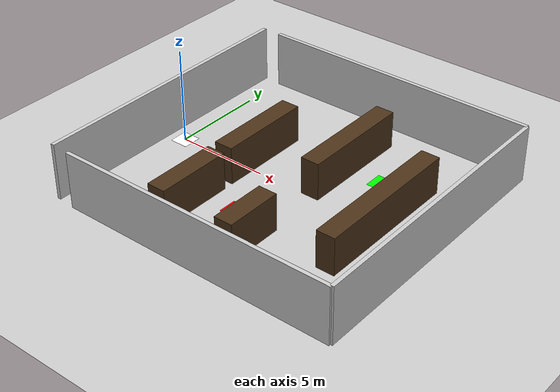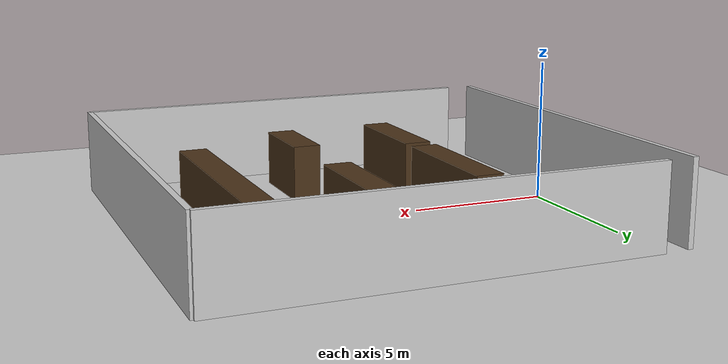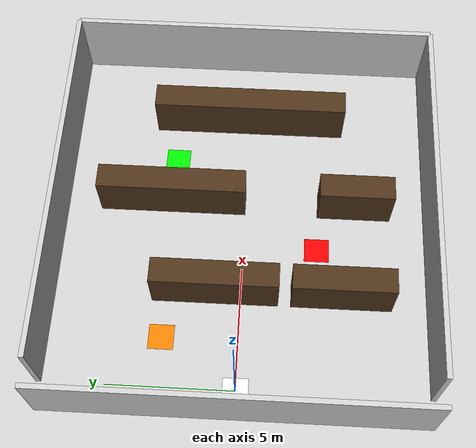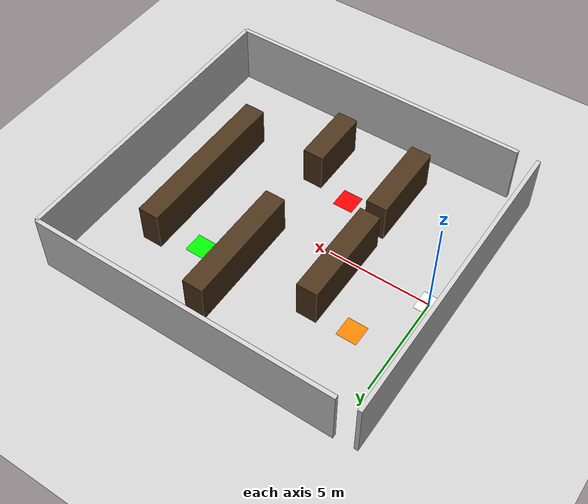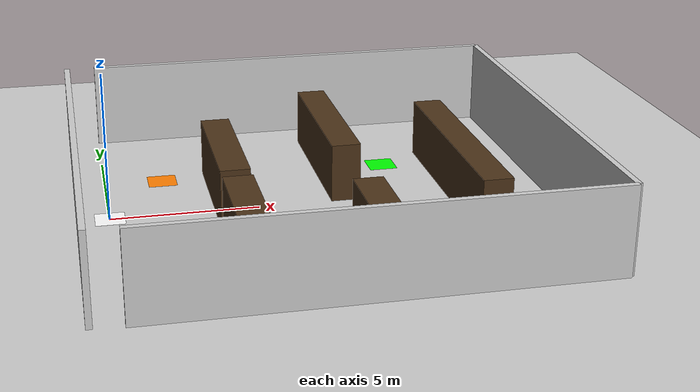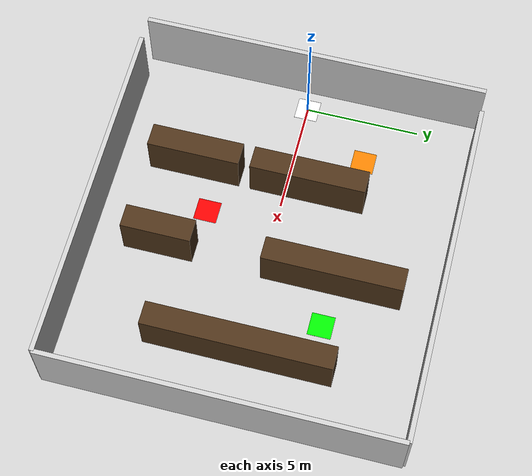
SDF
<?xml version="1.0" ?>
<sdf version="1.6">
  <world name="warehouse_detailed">
    <include><uri>model://sun</uri></include>
    <include><uri>model://ground_plane</uri></include>

    <!-- Perimeter Walls (15x15m) -->
    <model name="perimeter">
      <static>true</static>
      <link name="n_wall"><pose>7.5 7.5 1.5 0 0 0</pose><collision name="c"><geometry><box><size>15 0.2 3</size></box></geometry></collision><visual name="v"><geometry><box><size>15 0.2 3</size></box></geometry><material><ambient>0.8 0.8 0.8 1</ambient></material></visual></link>
      <link name="s_wall"><pose>7.5 -7.5 1.5 0 0 0</pose><collision name="c"><geometry><box><size>15 0.2 3</size></box></geometry></collision><visual name="v"><geometry><box><size>15 0.2 3</size></box></geometry><material><ambient>0.8 0.8 0.8 1</ambient></material></visual></link>
      <link name="e_wall"><pose>15 0 1.5 0 0 0</pose><collision name="c"><geometry><box><size>0.2 15 3</size></box></geometry></collision><visual name="v"><geometry><box><size>0.2 15 3</size></box></geometry><material><ambient>0.8 0.8 0.8 1</ambient></material></visual></link>
      <link name="w_wall"><pose>-1 0 1.5 0 0 0</pose><collision name="c"><geometry><box><size>0.2 15 3</size></box></geometry></collision><visual name="v"><geometry><box><size>0.2 15 3</size></box></geometry><material><ambient>0.8 0.8 0.8 1</ambient></material></visual></link>
    </model>

    <!-- Warehouse Storage Aisles -->
    <model name="racks">
      <static>true</static>
      <!-- Aisle 1 -->
      <link name="rack1_a"><pose>4 1 1 0 0 0</pose><collision name="c"><geometry><box><size>1 5 2</size></box></geometry></collision><visual name="v"><geometry><box><size>1 5 2</size></box></geometry><material><ambient>0.3 0.2 0.1 1</ambient></material></visual></link>
      <link name="rack1_b"><pose>4 -4 1 0 0 0</pose><collision name="c"><geometry><box><size>1 4 2</size></box></geometry></collision><visual name="v"><geometry><box><size>1 4 2</size></box></geometry><material><ambient>0.3 0.2 0.1 1</ambient></material></visual></link>
      <!-- Aisle 2 -->
      <link name="rack2_a"><pose>8 3 1 0 0 0</pose><collision name="c"><geometry><box><size>1 6 2</size></box></geometry></collision><visual name="v"><geometry><box><size>1 6 2</size></box></geometry><material><ambient>0.3 0.2 0.1 1</ambient></material></visual></link>
      <link name="rack2_b"><pose>8 -4.5 1 0 0 0</pose><collision name="c"><geometry><box><size>1 3 2</size></box></geometry></collision><visual name="v"><geometry><box><size>1 3 2</size></box></geometry><material><ambient>0.3 0.2 0.1 1</ambient></material></visual></link>
      <!-- Aisle 3 -->
      <link name="rack3"><pose>12 0 1 0 0 0</pose><collision name="c"><geometry><box><size>1 8 2</size></box></geometry></collision><visual name="v"><geometry><box><size>1 8 2</size></box></geometry><material><ambient>0.3 0.2 0.1 1</ambient></material></visual></link>
    </model>

    <!-- Floor Markers for Zones -->
    <model name="markers">
      <static>true</static>
      <!-- White Spawn Zone -->
      <link name="spawn_zone"><pose>0 0 0.01 0 0 0</pose><visual name="v"><geometry><plane><normal>0 0 1</normal><size>1 1</size></plane></geometry><material><ambient>1 1 1 1</ambient></material></visual></link>
      <!-- CHANGED: Orange Loading Zone -->
      <link name="loading_zone"><pose>2.0 3.0 0.01 0 0 0</pose><visual name="v"><geometry><plane><normal>0 0 1</normal><size>1 1</size></plane></geometry><material><ambient>1 0.5 0 1</ambient></material></visual></link>
      <!-- Delivery Points A, B, C -->
      <link name="point_a"><pose>6.0 -3.0 0.01 0 0 0</pose><visual name="v"><geometry><plane><normal>0 0 1</normal><size>1 1</size></plane></geometry><material><ambient>1 0 0 1</ambient></material></visual></link>
      <link name="point_b"><pose>10.0 3.0 0.01 0 0 0</pose><visual name="v"><geometry><plane><normal>0 0 1</normal><size>1 1</size></plane></geometry><material><ambient>0 1 0 1</ambient></material></visual></link>
      <link name="point_c"><pose>12.0 -3.0 0.01 0 0 0</pose><visual name="v"><geometry><plane><normal>0 0 1</normal><size>1 1</size></plane></geometry><material><ambient>1 1 0 1</ambient></material></visual></link>
    </model>
  </world>
</sdf>
